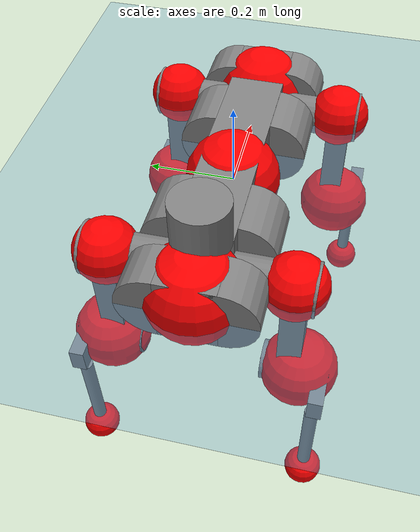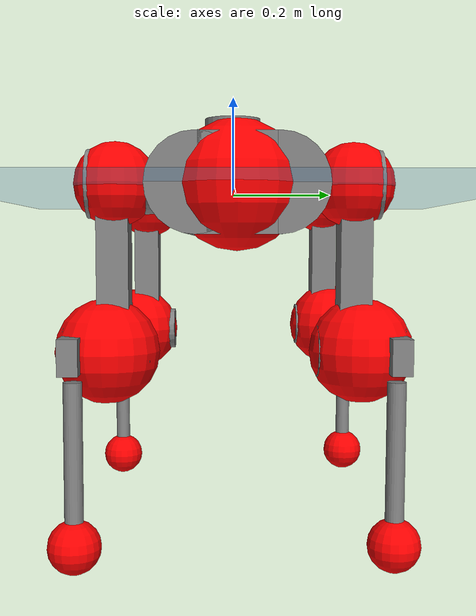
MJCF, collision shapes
<mujoco model="anymal_c">
  <compiler angle="radian" assetdir="assets" balanceinertia="true" inertiafromgeom="false"/>

  <option timestep="0.005" density="1.2" viscosity="2e-05"/>

  <size nkey="1"/>

  <visual>
    <quality shadowsize="8192"/>
    <map shadowclip="0.5"/>
  </visual>

  <default>
    <default class="/">
      <material specular="0" shininess="0.25"/>
      <geom contype="0" conaffinity="0" group="1" solref="-1000 -80"/>
      <site size="0.01 0.005 0.005" group="5"/>
      <general forcelimited="true" forcerange="-80 80" biastype="affine" gainprm="80" biasprm="0 -80 -2"/>
      <default class="anymal_c">
        <joint armature="0.01" damping="0.01" frictionloss="0.1"/>
        <default class="visual">
          <geom type="mesh" group="2"/>
          <default class="visual_zflip"/>
        </default>
        <default class="collision">
          <geom type="cylinder" group="3"/>
          <default class="foot">
            <geom size="0.03 0 0" type="sphere" condim="6" priority="1" friction="0.8 0.02 0.01" solimp="0.015 1 0.03"/>
          </default>
        </default>
      </default>
      <default class="reward_collision_sphere">
        <geom group="5" rgba="1 0 0 1"/>
      </default>
    </default>
  </default>

  <asset>
    <texture type="skybox" colorspace="auto" name="//unnamed_texture_0" builtin="gradient" rgb1="0.95 0.95 0.95" rgb2="0.95 0.95 0.95" width="100" height="600"/>
    <texture type="2d" colorspace="auto" name="texplane" builtin="checker" rgb1="0.345 0.575 0.748" rgb2="0.345 0.575 0.748" markrgb="1 1 1" width="512" height="512"/>
    <texture type="2d" colorspace="linear" name="base" file="base.png"/>
    <texture type="2d" colorspace="linear" name="top_shell" file="top_shell.png"/>
    <texture type="2d" colorspace="linear" name="bottom_shell" file="bottom_shell.png"/>
    <texture type="2d" colorspace="linear" name="remote" file="remote.png"/>
    <texture type="2d" colorspace="linear" name="hatch" file="hatch.png"/>
    <texture type="2d" colorspace="linear" name="handle" file="handle.png"/>
    <texture type="2d" colorspace="linear" name="face" file="face.png"/>
    <texture type="2d" colorspace="linear" name="battery" file="battery.png"/>
    <texture type="2d" colorspace="linear" name="lidar_cage" file="lidar_cage.png"/>
    <texture type="2d" colorspace="linear" name="depth_camera" file="depth_camera.png"/>
    <texture type="2d" colorspace="linear" name="wide_angle_camera" file="wide_angle_camera.png"/>
    <texture type="2d" colorspace="linear" name="lidar" file="lidar.png"/>
    <texture type="2d" colorspace="linear" name="drive" file="drive.png"/>
    <texture type="2d" colorspace="linear" name="hip_l" file="hip_l.png"/>
    <texture type="2d" colorspace="linear" name="shank_l" file="shank_l.png"/>
    <texture type="2d" colorspace="linear" name="foot" file="foot.png"/>
    <texture type="2d" colorspace="linear" name="thigh" file="thigh.png"/>
    <texture type="2d" colorspace="linear" name="shank_r" file="shank_r.png"/>
    <texture type="2d" colorspace="linear" name="hip_r" file="hip_r.png"/>
    <material name="MatPlane" class="/" texture="texplane" texuniform="true" texrepeat="2 2" specular="0.9" shininess="0.5"/>
    <material name="black_plastic" class="/" rgba="0.007 0.007 0.007 1"/>
    <material name="green" class="/" rgba="0.052 0.178 0.033 1"/>
    <material name="red" class="/" rgba="0.178 0.006 0.005 1"/>
    <material name="yellow" class="/" rgba="0.178 0.119 0.006 1"/>
    <material name="lwl" class="/" rgba="0.8 0.8 0.8 1"/>
    <material name="base" class="/" texture="base"/>
    <material name="top_shell" class="/" texture="top_shell"/>
    <material name="bottom_shell" class="/" texture="bottom_shell"/>
    <material name="hip_l" class="/" texture="hip_l"/>
    <material name="thigh" class="/" texture="thigh"/>
    <material name="shank_l" class="/" texture="shank_l"/>
    <material name="foot" class="/" texture="foot"/>
    <material name="hip_r" class="/" texture="hip_r"/>
    <material name="shank" class="/" texture="shank_r"/>
    <material name="hatch" class="/" texture="hatch"/>
    <material name="remote" class="/" texture="remote"/>
    <material name="handle" class="/" texture="handle"/>
    <material name="face" class="/" texture="face"/>
    <material name="depth_camera" class="/" texture="depth_camera"/>
    <material name="wide_angle_camera" class="/" texture="wide_angle_camera"/>
    <material name="battery" class="/" texture="battery"/>
    <material name="lidar_cage" class="/" texture="lidar_cage"/>
    <material name="lidar" class="/" texture="lidar"/>
    <material name="drive" class="/" texture="drive"/>
    <mesh name="base_0" class="/" file="base_0.obj"/>
    <mesh name="base_1" class="/" file="base_1.obj"/>
    <mesh name="base_2" class="/" file="base_2.obj"/>
    <mesh name="base_3" class="/" file="base_3.obj"/>
    <mesh name="base_4" class="/" file="base_4.obj"/>
    <mesh name="base_5" class="/" file="base_5.obj"/>
    <mesh name="top_shell" class="/" file="top_shell.obj"/>
    <mesh name="bottom_shell" class="/" file="bottom_shell.obj"/>
    <mesh name="remote" class="/" file="remote.obj"/>
    <mesh name="handle" class="/" file="handle.obj"/>
    <mesh name="face" class="/" file="face.obj"/>
    <mesh name="wide_angle_camera" class="/" file="wide_angle_camera.obj"/>
    <mesh name="depth_camera" class="/" file="depth_camera.obj"/>
    <mesh name="battery" class="/" file="battery.obj"/>
    <mesh name="lidar_cage" class="/" file="lidar_cage.obj"/>
    <mesh name="lidar" class="/" file="lidar.obj"/>
    <mesh name="drive" class="/" file="drive.obj"/>
    <mesh name="hip_l" class="/" file="hip_l.obj"/>
    <mesh name="thigh" class="/" file="thigh.obj"/>
    <mesh name="shank_l" class="/" file="shank_l.obj"/>
    <mesh name="foot" class="/" file="foot.obj"/>
    <mesh name="hip_r" class="/" file="hip_r.obj"/>
    <mesh name="hatch" class="/" file="hatch.obj"/>
    <mesh name="shank_r" class="/" file="shank_r.obj"/>
  </asset>

  <worldbody>
    <geom name="floor" class="/" size="100 100 0.125" type="plane" group="0" material="MatPlane"/>
    <light name="toplight_shadow" class="/" pos="0 0 5" dir="0.0990148 0.0990148 -0.990148" type="directional" ambient="0.04 0.04 0.04" diffuse="0.55 0.55 0.55" specular="0.12 0.12 0.12"/>
    <light name="toplight_fill" class="/" pos="0 0 5" dir="0.0990148 0.0990148 -0.990148" type="directional" castshadow="false" ambient="0.04 0.04 0.04" diffuse="0.3 0.3 0.3" specular="0.08 0.08 0.08"/>
    <body name="trunk" childclass="anymal_c" pos="0.0064013 0.00248234 -0.000761922" quat="0.999998 0.000386285 0.00185842 -0.000474685">
      <inertial pos="0.00899783 -0.00275171 0.0481047" quat="0.502064 0.496787 0.499507 0.501625" mass="15.529" diaginertia="0.169254 0.598893 0.237194"/>
      <joint name="//unnamed_joint_0" type="free" armature="0" damping="0" frictionloss="0"/>
      <geom name="//unnamed_geom_1" class="visual" material="green" mesh="base_0"/>
      <geom name="//unnamed_geom_2" class="visual" material="yellow" mesh="base_1"/>
      <geom name="//unnamed_geom_3" class="visual" material="red" mesh="base_2"/>
      <geom name="//unnamed_geom_4" class="visual" material="black_plastic" mesh="base_3"/>
      <geom name="//unnamed_geom_5" class="visual" material="lwl" mesh="base_4"/>
      <geom name="//unnamed_geom_6" class="visual" material="base" mesh="base_5"/>
      <geom name="trunk_1" class="collision" size="0.270621 0.0653223 0.0839859" type="box"/>
      <geom name="trunk_2" class="collision" size="0.0839859 0.0676553" pos="0.168145 0.0693972 0" quat="0.707107 0 0.707107 0"/>
      <geom name="trunk_3" class="collision" size="0.0839859 0.0676553" pos="-0.168145 0.0693972 0" quat="0.707107 0 0.707107 0"/>
      <geom name="trunk_4" class="collision" size="0.0839859 0.0676553" pos="0.168145 -0.0693972 0" quat="0.707107 0 0.707107 0"/>
      <geom name="trunk_5" class="collision" size="0.0839859 0.0676553" pos="-0.168145 -0.0693972 0" quat="0.707107 0 0.707107 0"/>
      <geom name="//unnamed_geom_12" class="visual" material="top_shell" mesh="top_shell"/>
      <geom name="//unnamed_geom_13" class="visual" material="bottom_shell" mesh="bottom_shell"/>
      <geom name="//unnamed_geom_14" class="visual" material="remote" mesh="remote"/>
      <geom name="//unnamed_geom_15" class="visual" material="handle" mesh="handle"/>
      <geom name="//unnamed_geom_16" class="visual" pos="0.320442 0 0" quat="1 0 0 0" material="face" mesh="face"/>
      <geom name="trunk_6" class="collision" size="0.0513247 0.0653223 0.0839859" pos="0.362961 0 0" type="box"/>
      <geom name="//unnamed_geom_18" class="collision" size="0.0839859 0.0513247" pos="0.362961 0.0693972 0" quat="0.707107 0 0.707107 0"/>
      <geom name="//unnamed_geom_19" class="collision" size="0.0839859 0.0513247" pos="0.362961 -0.0693972 0" quat="0.707107 0 0.707107 0"/>
      <geom name="//unnamed_geom_20" class="visual" pos="0.356903 0 -0.0322148" quat="0.965926 0 0.258819 0" material="depth_camera" mesh="depth_camera"/>
      <geom name="//unnamed_geom_21" class="visual" pos="0.39659 0 0.0154948" material="wide_angle_camera" mesh="wide_angle_camera"/>
      <geom name="//unnamed_geom_22" class="visual_zflip" pos="-0.320442 0 0" quat="0 0 0 1" material="face" mesh="face"/>
      <geom name="trunk_7" class="collision" size="0.0513247 0.0653223 0.0839859" pos="-0.362961 0 0" quat="0 0 0 1" type="box"/>
      <geom name="//unnamed_geom_24" class="collision" size="0.0839859 0.0513247" pos="-0.362961 -0.0693972 0" quat="0 -0.707107 0 0.707107"/>
      <geom name="//unnamed_geom_25" class="collision" size="0.0839859 0.0513247" pos="-0.362961 0.0693972 0" quat="0 -0.707107 0 0.707107"/>
      <geom name="//unnamed_geom_26" class="visual" pos="-0.356903 0 -0.0322148" quat="0 -0.258819 0 0.965926" material="depth_camera" mesh="depth_camera"/>
      <geom name="//unnamed_geom_27" class="visual_zflip" pos="-0.39659 0 0.0154948" quat="0 0 0 1" material="wide_angle_camera" mesh="wide_angle_camera"/>
      <geom name="//unnamed_geom_28" class="visual" material="battery" mesh="battery"/>
      <geom name="//unnamed_geom_29" class="visual" pos="0 0.0786771 0.0280774" quat="0.683013 -0.183013 0.183013 0.683013" material="depth_camera" mesh="depth_camera"/>
      <geom name="//unnamed_geom_30" class="visual" pos="0 -0.0786771 0.0280774" quat="0.683013 0.183013 0.183013 -0.683013" material="depth_camera" mesh="depth_camera"/>
      <geom name="//unnamed_geom_31" class="visual" pos="-0.281401 0 0.0760769" quat="1 0 0 0" material="lidar_cage" mesh="lidar_cage"/>
      <geom name="trunk_8" class="collision" size="0.0653223 0.0559906" pos="-0.281401 0 0.13818"/>
      <geom name="//unnamed_geom_33" class="visual" pos="-0.281401 8.57676e-05 0.147186" quat="0.707107 0 0 -0.707107" material="lidar" mesh="lidar"/>
      <geom name="//unnamed_geom_34" class="visual" pos="0.231847 0.10312 -7.53331e-10" quat="0.258819 0.965926 0 0" material="drive" mesh="drive"/>
      <geom name="//unnamed_geom_35" class="visual" pos="0.231847 -0.10312 7.53331e-10" quat="0.258819 -0.965926 0 0" material="drive" mesh="drive"/>
      <geom name="//unnamed_geom_36" class="visual" pos="-0.231847 0.10312 7.53331e-10" quat="0 0 0.965926 -0.258819" material="drive" mesh="drive"/>
      <geom name="//unnamed_geom_37" class="visual" pos="-0.231847 -0.10312 -7.53331e-10" quat="0 0 -0.965926 -0.258819" material="drive" mesh="drive"/>
      <geom name="//unnamed_geom_38" class="visual" pos="0.0896773 0 0.0755594" quat="1 0 0 0" material="hatch" mesh="hatch"/>
      <geom name="//unnamed_geom_39" class="reward_collision_sphere" size="0.111981"/>
      <geom name="//unnamed_geom_40" class="reward_collision_sphere" size="0.111981" pos="0.347886 0 0"/>
      <geom name="//unnamed_geom_41" class="reward_collision_sphere" size="0.111981" pos="-0.347886 0 0"/>
      <site name="imu" pos="0.197253 0.0133537 0.0391671" size="0.00933176"/>
      <camera name="track" pos="0 -1.98278 0" quat="0.707107 0.707107 0 0" mode="trackcom"/>
      <camera name="ego_camera" pos="0.347886 0 -0.0414024" quat="-0.5 -0.5 0.5 0.5"/>
      <body name="LF_HIP" pos="0.233453 0.104807 0.000957654" quat="0.261581 0.96518 6.71295e-05 -0.00152476">
        <inertial pos="0.0511018 -0.0144897 -0.00783569" quat="-0.121313 0.712984 -0.132934 0.677692" mass="2.0635" diaginertia="0.0014767 0.00474682 0.00363821"/>
        <joint name="LF_HAA" pos="0 0 0" axis="0.999891 0.0133977 0.0061322" range="-0.754033 0.58371" armature="0.00779201" damping="0.0158681" frictionloss="0.0955033"/>
        <geom name="//unnamed_geom_42" class="visual" pos="0 -4.43151e-05 7.27871e-06" quat="0.258819 -0.965926 0 0" material="hip_l" mesh="hip_l"/>
        <geom name="//unnamed_geom_43" class="visual" pos="0.0463075 -0.0590013 -0.0343874" quat="0.183013 -0.683013 0.683013 0.183013" material="drive" mesh="drive"/>
        <geom name="//unnamed_geom_44" class="collision" size="0.0466588 0.0653223" pos="0.0463075 -0.0118568 -0.00714709" quat="-0.353553 -0.612372 0.612372 -0.353553"/>
        <body name="LF_THIGH" pos="0.0480319 -0.0690952 -0.0439679" quat="0.182566 -0.682709 0.683414 0.183093">
          <inertial pos="0.0174915 0.00129377 -0.259501" quat="0.994121 -0.00609907 -0.0727004 0.0800111" mass="2.42673" diaginertia="0.00810838 0.0291539 0.00490096"/>
          <joint name="LF_HFE" pos="0 0 0" axis="1 -0.0001357 0.000735696" range="-3.06121 3.07313" armature="0.00774822" damping="0.0384215" frictionloss="0.0921128"/>
          <geom name="//unnamed_geom_45" class="visual" pos="-0.00434349 -6.84432e-06 0" quat="0.707107 0 0 -0.707107" material="thigh" mesh="thigh"/>
          <geom name="//unnamed_geom_46" class="collision" size="0.0606565 0.037327" pos="0.0309232 0 0" quat="0.5 0.5 -0.5 -0.5"/>
          <geom name="//unnamed_geom_47" class="collision" size="0.0349941 0.0279953 0.131871" pos="0.0231924 0 -0.146268" quat="0.707107 0 0 -0.707107" type="box"/>
          <geom name="//unnamed_geom_48" class="visual" pos="0.0775399 0 -0.294992" quat="1 0 0 0" material="drive" mesh="drive"/>
          <geom name="//unnamed_geom_49" class="collision" size="0.0466588 0.0653223" pos="0.0234243 0 -0.294992" quat="0.707107 0 0.707107 0"/>
          <geom name="//unnamed_geom_50" class="reward_collision_sphere" size="0.0746541" pos="0.019327 0 0"/>
          <body name="LF_SHANK" pos="0.0765415 0.00177412 -0.293983" quat="1 0.000917617 9.99087e-05 0.000249877">
            <inertial pos="0.00299134 -0.0612798 -0.0804009" quat="0.993323 -0.113581 -0.0185619 -0.00796132" mass="0.490385" diaginertia="0.0027719 0.00884469 0.00136984"/>
            <joint name="LF_KFE" pos="0 0 0" axis="0.999937 -0.00957435 0.00593762" range="-3.17977 3.2267" armature="0.00973697" damping="0.0101724" frictionloss="0.0827652"/>
            <geom name="//unnamed_geom_51" class="visual" pos="-0.00141632 -0.00755187 0" quat="0.707107 0 0 -0.707107" material="shank_l" mesh="shank_l"/>
            <geom name="LF_kfe_act" class="collision" size="0.0559906 0.0186635" pos="0.0154616 0 0" quat="0.5 0.5 -0.5 -0.5"/>
            <geom name="//unnamed_geom_53" class="collision" size="0.0536567 0.0314947 0.0177303" pos="0.0154616 -0.0570039 0" quat="0.5 0.5 -0.5 -0.5" type="box"/>
            <geom name="//unnamed_geom_54" class="visual" pos="0.010089 -0.0896263 -0.349819" quat="0.382683 0 0 -0.92388" material="foot" mesh="foot"/>
            <geom name="LF_calf" class="collision" size="0.0163306 0.131813" pos="0.0100887 -0.0871926 -0.17491" quat="0.707107 0 0 -0.707107"/>
            <geom name="LF_foot" class="foot" size="0.0314665" pos="0.0100887 -0.0871926 -0.32653" quat="0.707107 0 0 -0.707107"/>
            <geom name="//unnamed_geom_57" class="reward_collision_sphere" size="0.0933176" pos="-0.038654 0 0"/>
            <geom name="//unnamed_geom_58" class="reward_collision_sphere" size="0.0466588" pos="0.0100887 -0.0871926 -0.32653"/>
            <site name="LF_foot" class="foot" pos="0.0100887 -0.0871926 -0.32653" quat="0.707107 0 0 -0.707107" size="0.00933176"/>
          </body>
        </body>
      </body>
      <body name="RF_HIP" pos="0.231767 -0.107722 -0.00146235" quat="0.258847 -0.965918 1.15829e-05 2.27475e-05">
        <inertial pos="0.0402353 0.0172481 -0.00837816" quat="0.128153 0.680477 0.127698 0.710085" mass="1.96211" diaginertia="0.00152468 0.00445034 0.00387175"/>
        <joint name="RF_HAA" pos="0 0 0" axis="1 -0.000294752 1.9876e-05" range="-0.5107 0.734244" armature="0.0124269" damping="0.00980601" frictionloss="0.0625522"/>
        <geom name="//unnamed_geom_59" class="visual" pos="0 4.43147e-05 7.2787e-06" quat="0.258819 0.965926 0 0" material="hip_r" mesh="hip_r"/>
        <geom name="//unnamed_geom_60" class="visual" pos="0.0463075 0.0590013 -0.0343874" quat="0.183013 0.683013 0.683013 -0.183013" material="drive" mesh="drive"/>
        <geom name="//unnamed_geom_61" class="collision" size="0.0466588 0.0653223" pos="0.0463075 0.0118568 -0.00714709" quat="-0.353553 0.612372 0.612372 0.353553"/>
        <body name="RF_THIGH" pos="0.0495051 0.0706799 -0.0484445" quat="0.181824 0.684923 0.681179 -0.18389">
          <inertial pos="0.0265883 0.00711052 -0.255988" quat="0.992221 -0.0133788 -0.0881107 0.0869213" mass="2.6918" diaginertia="0.00823857 0.0281448 0.00514147"/>
          <joint name="RF_HFE" pos="0 0 0" axis="0.99989 0.00613633 -0.0134928" stiffness="0.00975159" range="-3.17364 3.12263" armature="0.00912368" damping="0.0105001" frictionloss="0.0952941"/>
          <geom name="//unnamed_geom_62" class="visual" pos="-0.00434349 -6.84432e-06 0" quat="0.707107 0 0 -0.707107" material="thigh" mesh="thigh"/>
          <geom name="//unnamed_geom_63" class="collision" size="0.0606565 0.037327" pos="0.0309232 0 0" quat="0.5 0.5 0.5 0.5"/>
          <geom name="//unnamed_geom_64" class="collision" size="0.0349941 0.0279953 0.131871" pos="0.0231924 0 -0.146268" quat="0.707107 0 0 0.707107" type="box"/>
          <geom name="//unnamed_geom_65" class="visual" pos="0.0775399 0 -0.294992" quat="1 0 0 0" material="drive" mesh="drive"/>
          <geom name="//unnamed_geom_66" class="collision" size="0.0466588 0.0653223" pos="0.0234243 0 -0.294992" quat="0.707107 0 0.707107 0"/>
          <geom name="//unnamed_geom_67" class="reward_collision_sphere" size="0.0746541" pos="0.019327 0 0"/>
          <body name="RF_SHANK" pos="0.075372 4.01724e-05 -0.294952" quat="1 0.000421616 -7.29985e-05 -0.000114326">
            <inertial pos="0.00374599 0.0613937 -0.085042" quat="0.991852 0.123889 0.00596162 0.029065" mass="0.463793" diaginertia="0.00251188 0.008683 0.00128385"/>
            <joint name="RF_KFE" pos="0 0 0" axis="0.999815 -0.00835488 -0.0173243" stiffness="0.00449896" range="-3.12493 3.09465" armature="0.0102118" damping="0.00208437" frictionloss="0.10217"/>
            <geom name="//unnamed_geom_68" class="visual" pos="-0.00141631 0.00755185 0" quat="0.707107 0 0 0.707107" material="shank" mesh="shank_r"/>
            <geom name="RF_kfe_act" class="collision" size="0.0559906 0.0186635" pos="0.0154616 0 0" quat="0.5 0.5 0.5 0.5"/>
            <geom name="//unnamed_geom_70" class="collision" size="0.0536567 0.0314947 0.0177303" pos="0.0154616 0.0570039 0" quat="0.5 0.5 0.5 0.5" type="box"/>
            <geom name="//unnamed_geom_71" class="visual" pos="0.0100884 0.0896263 -0.349819" quat="0.382683 0 0 0.92388" material="foot" mesh="foot"/>
            <geom name="RF_calf" class="collision" size="0.0163306 0.131813" pos="0.0100887 0.0871926 -0.17491" quat="0.707107 0 0 0.707107"/>
            <geom name="RF_foot" class="foot" size="0.0323731" pos="0.0100887 0.0871926 -0.32653" quat="0.707107 0 0 0.707107"/>
            <geom name="//unnamed_geom_74" class="reward_collision_sphere" size="0.0933176" pos="-0.038654 0 0"/>
            <geom name="//unnamed_geom_75" class="reward_collision_sphere" size="0.0466588" pos="0.0100887 0.0871926 -0.32653"/>
            <site name="RF_foot" class="foot" pos="0.0100887 0.0871926 -0.32653" quat="0.707107 0 0 0.707107" size="0.00933176"/>
          </body>
        </body>
      </body>
      <body name="LH_HIP" pos="-0.232943 0.106106 -0.00101971" quat="0.00272246 -0.00200272 0.965352 -0.260928">
        <inertial pos="0.0374309 0.0127842 -0.00659059" quat="0.135208 0.67934 0.12633 0.71011" mass="2.36084" diaginertia="0.00165546 0.00462602 0.00389006"/>
        <joint name="LH_HAA" pos="0 0 0" axis="0.999963 0.00328045 0.00790306" range="-0.538684 0.769933" armature="0.00941557" damping="0.00620845" frictionloss="0.0972234"/>
        <geom name="//unnamed_geom_76" class="visual" pos="0 4.43147e-05 7.2787e-06" quat="-0.258819 -0.965926 0 0" material="hip_r" mesh="hip_r"/>
        <geom name="//unnamed_geom_77" class="visual" pos="0.0463075 0.0590013 -0.0343874" quat="0.183013 0.683013 0.683013 -0.183013" material="drive" mesh="drive"/>
        <geom name="//unnamed_geom_78" class="collision" size="0.0466588 0.0653223" pos="0.0463075 0.0118568 -0.00714709" quat="-0.353553 0.612372 0.612372 0.353553"/>
        <body name="LH_THIGH" pos="0.052011 0.0723671 -0.0465472" quat="0.182686 0.685112 0.680908 -0.183336">
          <inertial pos="0.0233351 -0.00225043 -0.256337" quat="0.989635 -0.0106825 -0.0941372 0.107917" mass="2.62181" diaginertia="0.00850104 0.0298042 0.00503548"/>
          <joint name="LH_HFE" pos="0 0 0" axis="0.999933 -0.00786488 0.00853859" range="-3.1892 3.1333" armature="0.0102029" damping="0.038168" frictionloss="0.0880637"/>
          <geom name="//unnamed_geom_79" class="visual" pos="-0.00434349 -6.84432e-06 0" quat="0.707107 0 0 -0.707107" material="thigh" mesh="thigh"/>
          <geom name="//unnamed_geom_80" class="collision" size="0.0606565 0.037327" pos="0.0309232 0 0" quat="0.5 0.5 -0.5 -0.5"/>
          <geom name="//unnamed_geom_81" class="collision" size="0.0349941 0.0279953 0.131871" pos="0.0231924 0 -0.146268" quat="0.707107 0 0 -0.707107" type="box"/>
          <geom name="//unnamed_geom_82" class="visual" pos="0.0775399 0 -0.294992" quat="1 0 0 0" material="drive" mesh="drive"/>
          <geom name="//unnamed_geom_83" class="collision" size="0.0466588 0.0653223" pos="0.0234243 0 -0.294992" quat="0.707107 0 0.707107 0"/>
          <geom name="//unnamed_geom_84" class="reward_collision_sphere" size="0.0746541" pos="0.019327 0 0"/>
          <body name="LH_SHANK" pos="0.079246 0.000775337 -0.295362" quat="1 0.000165216 1.42305e-05 -0.000139843">
            <inertial pos="0.00392038 0.061137 -0.084532" quat="0.993117 0.114868 0.00122979 0.0228565" mass="0.473708" diaginertia="0.00281699 0.00896117 0.0012997"/>
            <joint name="LH_KFE" pos="0 0 0" axis="0.999996 0.00161436 -0.00211666" range="-3.18131 3.13535" armature="0.00942173" damping="0.033321" frictionloss="0.089117"/>
            <geom name="//unnamed_geom_85" class="visual" pos="-0.00141631 0.00755185 0" quat="-0.707107 0 0 -0.707107" material="shank" mesh="shank_r"/>
            <geom name="LH_kfe_act" class="collision" size="0.0559906 0.0186635" pos="0.0154616 0 0" quat="0.5 0.5 -0.5 -0.5"/>
            <geom name="//unnamed_geom_87" class="collision" size="0.0536567 0.0314947 0.0177303" pos="0.0154616 0.0570039 0" quat="0.5 0.5 -0.5 -0.5" type="box"/>
            <geom name="//unnamed_geom_88" class="visual" pos="0.0100884 0.0896263 -0.349819" quat="-0.382683 0 0 -0.92388" material="foot" mesh="foot"/>
            <geom name="LH_calf" class="collision" size="0.0163306 0.131813" pos="0.0100887 0.0871926 -0.17491" quat="0.707107 0 0 -0.707107"/>
            <geom name="LH_foot" class="foot" size="0.0257561" pos="0.0100887 0.0871926 -0.32653" quat="0.707107 0 0 -0.707107"/>
            <geom name="//unnamed_geom_91" class="reward_collision_sphere" size="0.0933176" pos="-0.038654 0 0"/>
            <geom name="//unnamed_geom_92" class="reward_collision_sphere" size="0.0466588" pos="0.0100887 0.0871926 -0.32653"/>
            <site name="LH_foot" class="foot" pos="0.0100887 0.0871926 -0.32653" quat="0.707107 0 0 -0.707107" size="0.00933176"/>
          </body>
        </body>
      </body>
      <body name="RH_HIP" pos="-0.233457 -0.0969612 -0.00411558" quat="-0.000625987 -0.00101194 -0.965868 -0.259034">
        <inertial pos="0.0437874 -0.018852 -0.00834789" quat="-0.135502 0.71011 -0.160287 0.67208" mass="2.24318" diaginertia="0.00158179 0.00457372 0.00384478"/>
        <joint name="RH_HAA" pos="0 0 0" axis="0.999962 -0.00688357 -0.0054215" range="-0.679139 0.49533" armature="0.00614291" damping="0" frictionloss="0.115548"/>
        <geom name="//unnamed_geom_93" class="visual" pos="0 -4.43151e-05 7.27871e-06" quat="-0.258819 0.965926 0 0" material="hip_l" mesh="hip_l"/>
        <geom name="//unnamed_geom_94" class="visual" pos="0.0463075 -0.0590013 -0.0343874" quat="-0.183013 0.683013 -0.683013 -0.183013" material="drive" mesh="drive"/>
        <geom name="//unnamed_geom_95" class="collision" size="0.0466588 0.0653223" pos="0.0463075 -0.0118568 -0.00714709" quat="0.353553 0.612372 -0.612372 0.353553"/>
        <body name="RH_THIGH" pos="0.0485643 -0.0744036 -0.0388816" quat="-0.182909 0.683119 -0.682976 -0.182857">
          <inertial pos="0.0244141 0.000167536 -0.252366" quat="0.993357 -0.0039998 -0.0789612 0.0836118" mass="2.47001" diaginertia="0.00820104 0.0283898 0.00524539"/>
          <joint name="RH_HFE" pos="0 0 0" axis="0.999939 0.0104056 0.0037537" stiffness="0.0114028" range="-3.03085 3.11232" armature="0.00895972" damping="0" frictionloss="0.0849316"/>
          <geom name="//unnamed_geom_96" class="visual" pos="-0.00434349 -6.84432e-06 0" quat="0.707107 0 0 -0.707107" material="thigh" mesh="thigh"/>
          <geom name="//unnamed_geom_97" class="collision" size="0.0606565 0.037327" pos="0.0309232 0 0" quat="0.5 0.5 0.5 0.5"/>
          <geom name="//unnamed_geom_98" class="collision" size="0.0349941 0.0279953 0.131871" pos="0.0231924 0 -0.146268" quat="0.707107 0 0 0.707107" type="box"/>
          <geom name="//unnamed_geom_99" class="visual" pos="0.0775399 0 -0.294992" quat="1 0 0 0" material="drive" mesh="drive"/>
          <geom name="//unnamed_geom_100" class="collision" size="0.0466588 0.0653223" pos="0.0234243 0 -0.294992" quat="0.707107 0 0.707107 0"/>
          <geom name="//unnamed_geom_101" class="reward_collision_sphere" size="0.0746541" pos="0.019327 0 0"/>
          <body name="RH_SHANK" pos="0.0858322 -0.00307015 -0.294242" quat="0.999999 -0.00105287 -5.28659e-05 1.64171e-05">
            <inertial pos="-0.00343782 -0.0606153 -0.0843617" quat="0.992989 -0.114579 -0.00116844 -0.0290258" mass="0.471429" diaginertia="0.00301256 0.00992973 0.00140435"/>
            <joint name="RH_KFE" pos="0 0 0" axis="0.999872 0.012225 -0.0102945" range="-3.19487 2.98055" armature="0.0111194" damping="0.0177696" frictionloss="0.10131"/>
            <geom name="//unnamed_geom_102" class="visual" pos="-0.00141632 -0.00755187 0" quat="0.707107 0 0 -0.707107" material="shank_l" mesh="shank_l"/>
            <geom name="RH_kfe_act" class="collision" size="0.0559906 0.0186635" pos="0.0154616 0 0" quat="0.5 0.5 0.5 0.5"/>
            <geom name="//unnamed_geom_104" class="collision" size="0.0536567 0.0314947 0.0177303" pos="0.0154616 -0.0570039 0" quat="0.5 0.5 0.5 0.5" type="box"/>
            <geom name="//unnamed_geom_105" class="visual" pos="0.010089 -0.0896263 -0.349819" quat="0.382683 0 0 -0.92388" material="foot" mesh="foot"/>
            <geom name="RH_calf" class="collision" size="0.0163306 0.131813" pos="0.0100887 -0.0871926 -0.17491" quat="0.707107 0 0 0.707107"/>
            <geom name="RH_foot" class="foot" size="0.0270716" pos="0.0100887 -0.0871926 -0.32653" quat="0.707107 0 0 0.707107"/>
            <geom name="//unnamed_geom_108" class="reward_collision_sphere" size="0.0933176" pos="-0.038654 0 0"/>
            <geom name="//unnamed_geom_109" class="reward_collision_sphere" size="0.0466588" pos="0.0100887 -0.0871926 -0.32653"/>
            <site name="RH_foot" class="foot" pos="0.0100887 -0.0871926 -0.32653" quat="0.707107 0 0 0.707107" size="0.00933176"/>
          </body>
        </body>
      </body>
    </body>
  </worldbody>

  <contact>
    <pair class="/" geom1="floor" geom2="LF_foot" name="//unnamed_contact_0"/>
    <pair class="/" geom1="floor" geom2="RF_foot" name="//unnamed_contact_1"/>
    <pair class="/" geom1="floor" geom2="LH_foot" name="//unnamed_contact_2"/>
    <pair class="/" geom1="floor" geom2="RH_foot" name="//unnamed_contact_3"/>
  </contact>

  <actuator>
    <general name="LF_HAA" class="/" joint="LF_HAA" forcerange="-73.5929 73.5929" gainprm="76.389" biasprm="0 -76.389 -2.1488"/>
    <general name="LF_HFE" class="/" joint="LF_HFE" forcerange="-76.1548 76.1548" gainprm="76.389" biasprm="0 -76.389 -2.1488"/>
    <general name="LF_KFE" class="/" joint="LF_KFE" forcerange="-72.2862 72.2862" gainprm="76.389" biasprm="0 -76.389 -2.1488"/>
    <general name="RF_HAA" class="/" joint="RF_HAA" forcerange="-54.0267 54.0267" gainprm="76.389" biasprm="0 -76.389 -2.1488"/>
    <general name="RF_HFE" class="/" joint="RF_HFE" forcerange="-76.9117 76.9117" gainprm="76.389" biasprm="0 -76.389 -2.1488"/>
    <general name="RF_KFE" class="/" joint="RF_KFE" forcerange="-83.2791 83.2791" gainprm="76.389" biasprm="0 -76.389 -2.1488"/>
    <general name="LH_HAA" class="/" joint="LH_HAA" forcerange="-70.523 70.523" gainprm="76.389" biasprm="0 -76.389 -2.1488"/>
    <general name="LH_HFE" class="/" joint="LH_HFE" forcerange="-70.3559 70.3559" gainprm="76.389" biasprm="0 -76.389 -2.1488"/>
    <general name="LH_KFE" class="/" joint="LH_KFE" forcerange="-81.4279 81.4279" gainprm="76.389" biasprm="0 -76.389 -2.1488"/>
    <general name="RH_HAA" class="/" joint="RH_HAA" forcerange="-82.1722 82.1722" gainprm="76.389" biasprm="0 -76.389 -2.1488"/>
    <general name="RH_HFE" class="/" joint="RH_HFE" forcerange="-71.2472 71.2472" gainprm="76.389" biasprm="0 -76.389 -2.1488"/>
    <general name="RH_KFE" class="/" joint="RH_KFE" forcerange="-59.4188 59.4188" gainprm="76.389" biasprm="0 -76.389 -2.1488"/>
  </actuator>

  <sensor>
    <gyro site="imu" name="imu_angular_velocity"/>
    <velocimeter site="imu" name="imu_linear_velocity"/>
    <framelinvel objtype="site" objname="LF_foot" name="LF_foot_global_linear_velocity"/>
    <framelinvel objtype="site" objname="RF_foot" name="RF_foot_global_linear_velocity"/>
    <framelinvel objtype="site" objname="LH_foot" name="LH_foot_global_linear_velocity"/>
    <framelinvel objtype="site" objname="RH_foot" name="RH_foot_global_linear_velocity"/>
  </sensor>

  <keyframe>
    <key name="home" qpos="0 0 0.55 1 0 0 0 0 0.4 -0.8 0 -0.4 0.8 0 -0.4 0.8 0 0.4 -0.8"/>
  </keyframe>
</mujoco>
